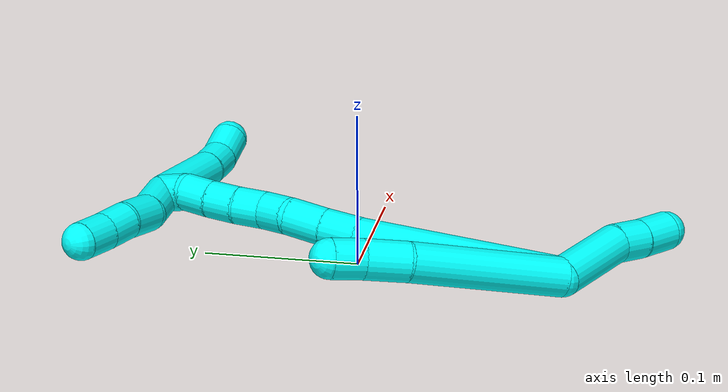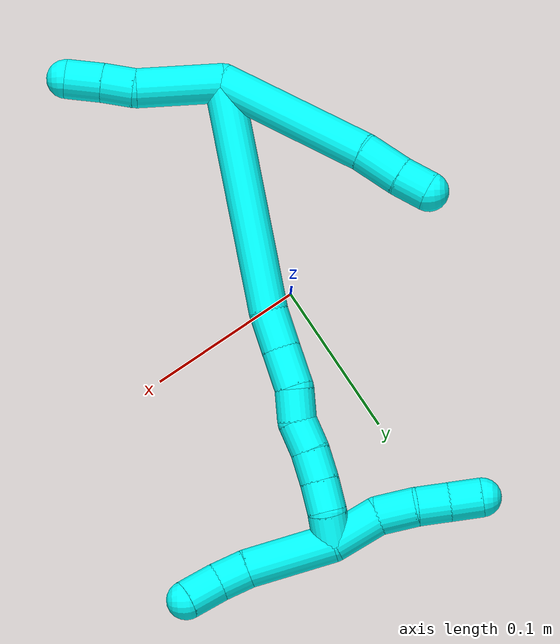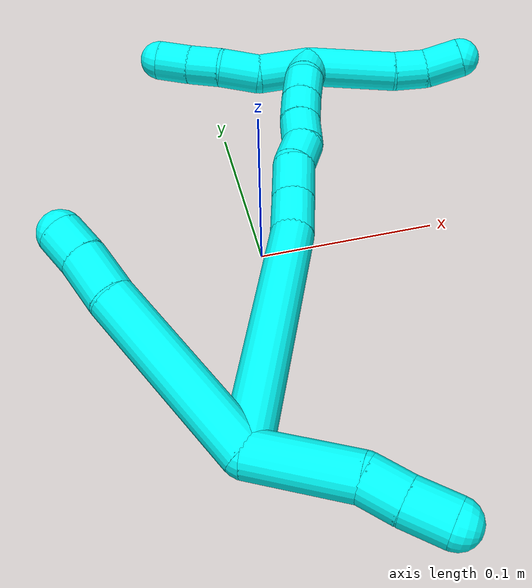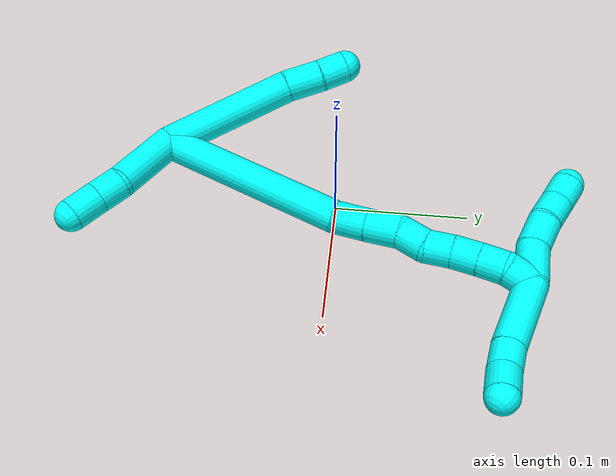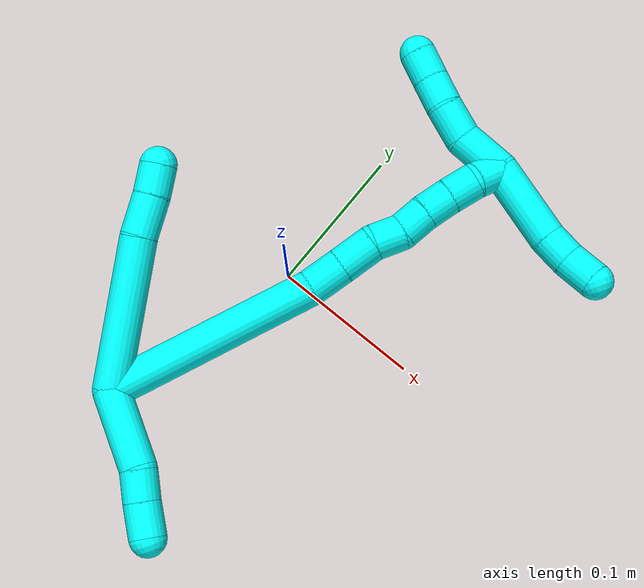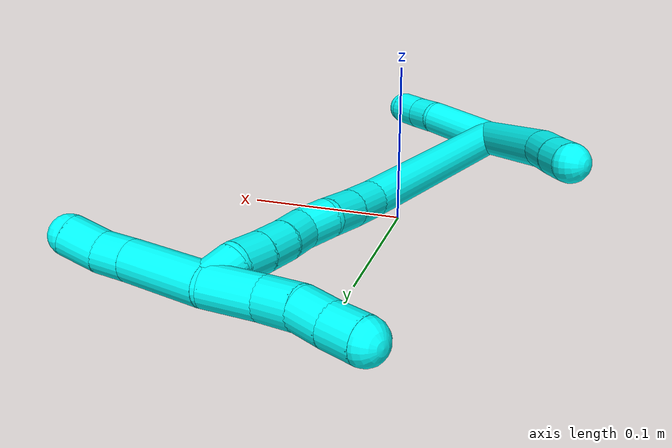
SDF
<sdf version="1.7">
 <world name="default">
  <model name="3">
   <static>0</static>
   <link name="3">
    <collision name="collision-cylinder-e_1_2_8">
     <pose>-0.020341 0.015974 -0.043842 -2.79218 -0.411097 1.73657</pose>
     <geometry><cylinder><radius>0.0125</radius><length>0.101805</length></cylinder></geometry>
     <surface>
      <friction><ode><mu>1.16</mu><mu2>1.16</mu2><slip1>0</slip1><slip2>0</slip2></ode></friction>
      <contact><ode><kp>1e+06</kp><kd>1</kd><max_vel>0</max_vel><min_depth>0.001</min_depth></ode></contact>
     </surface>
    </collision>
    <visual name="visual-cylinder-e_1_2_8">
     <pose>-0.020341 0.015974 -0.043842 -2.79218 -0.411097 1.73657</pose>
     <geometry><cylinder><radius>0.0125</radius><length>0.101805</length></cylinder></geometry>
     <material><ambient>0.003922 1 0.996078 1</ambient></material>
    </visual>
    <collision name="collision-cylinder-e_2_8_9">
     <pose>-0.046295 0.038055 -0.098865 -2.64174 -0.41493 1.37914</pose>
     <geometry><cylinder><radius>0.0125</radius><length>0.027843</length></cylinder></geometry>
     <surface>
      <friction><ode><mu>1.16</mu><mu2>1.16</mu2><slip1>0</slip1><slip2>0</slip2></ode></friction>
      <contact><ode><kp>1e+06</kp><kd>1</kd><max_vel>0</max_vel><min_depth>0.001</min_depth></ode></contact>
     </surface>
    </collision>
    <visual name="visual-cylinder-e_2_8_9">
     <pose>-0.046295 0.038055 -0.098865 -2.64174 -0.41493 1.37914</pose>
     <geometry><cylinder><radius>0.0125</radius><length>0.027843</length></cylinder></geometry>
     <material><ambient>0.003922 1 0.996078 1</ambient></material>
    </visual>
    <collision name="collision-cylinder-e_3_9_6">
     <pose>-0.055437 0.048094 -0.118743 -2.71696 -0.354223 1.38592</pose>
     <geometry><cylinder><radius>0.0125</radius><length>0.020353</length></cylinder></geometry>
     <surface>
      <friction><ode><mu>1.16</mu><mu2>1.16</mu2><slip1>0</slip1><slip2>0</slip2></ode></friction>
      <contact><ode><kp>1e+06</kp><kd>1</kd><max_vel>0</max_vel><min_depth>0.001</min_depth></ode></contact>
     </surface>
    </collision>
    <visual name="visual-cylinder-e_3_9_6">
     <pose>-0.055437 0.048094 -0.118743 -2.71696 -0.354223 1.38592</pose>
     <geometry><cylinder><radius>0.0125</radius><length>0.020353</length></cylinder></geometry>
     <material><ambient>0.003922 1 0.996078 1</ambient></material>
    </visual>
    <collision name="collision-cylinder-e_1_2_10">
     <pose>-0.004621 -0.002666 0.027196 0.097715 -0.167524 -0.008211</pose>
     <geometry><cylinder><radius>0.0125</radius><length>0.055429</length></cylinder></geometry>
     <surface>
      <friction><ode><mu>1.16</mu><mu2>1.16</mu2><slip1>0</slip1><slip2>0</slip2></ode></friction>
      <contact><ode><kp>1e+06</kp><kd>1</kd><max_vel>0</max_vel><min_depth>0.001</min_depth></ode></contact>
     </surface>
    </collision>
    <visual name="visual-cylinder-e_1_2_10">
     <pose>-0.004621 -0.002666 0.027196 0.097715 -0.167524 -0.008211</pose>
     <geometry><cylinder><radius>0.0125</radius><length>0.055429</length></cylinder></geometry>
     <material><ambient>0.003922 1 0.996078 1</ambient></material>
    </visual>
    <collision name="collision-cylinder-e_2_10_11">
     <pose>-0.008079 -0.007339 0.064681 0.192694 0.110522 0.010692</pose>
     <geometry><cylinder><radius>0.0125</radius><length>0.021093</length></cylinder></geometry>
     <surface>
      <friction><ode><mu>1.16</mu><mu2>1.16</mu2><slip1>0</slip1><slip2>0</slip2></ode></friction>
      <contact><ode><kp>1e+06</kp><kd>1</kd><max_vel>0</max_vel><min_depth>0.001</min_depth></ode></contact>
     </surface>
    </collision>
    <visual name="visual-cylinder-e_2_10_11">
     <pose>-0.008079 -0.007339 0.064681 0.192694 0.110522 0.010692</pose>
     <geometry><cylinder><radius>0.0125</radius><length>0.021093</length></cylinder></geometry>
     <material><ambient>0.003922 1 0.996078 1</ambient></material>
    </visual>
    <collision name="collision-cylinder-e_3_11_5">
     <pose>-0.006626 -0.01143 0.086518 0.178512 0.024714 0.002212</pose>
     <geometry><cylinder><radius>0.0125</radius><length>0.023478</length></cylinder></geometry>
     <surface>
      <friction><ode><mu>1.16</mu><mu2>1.16</mu2><slip1>0</slip1><slip2>0</slip2></ode></friction>
      <contact><ode><kp>1e+06</kp><kd>1</kd><max_vel>0</max_vel><min_depth>0.001</min_depth></ode></contact>
     </surface>
    </collision>
    <visual name="visual-cylinder-e_3_11_5">
     <pose>-0.006626 -0.01143 0.086518 0.178512 0.024714 0.002212</pose>
     <geometry><cylinder><radius>0.0125</radius><length>0.023478</length></cylinder></geometry>
     <material><ambient>0.003922 1 0.996078 1</ambient></material>
    </visual>
    <collision name="collision-cylinder-e_1_2_12">
     <pose>-0.040111 0.060619 -0.010496 -1.74224 -0.577776 0.678835</pose>
     <geometry><cylinder><radius>0.0125</radius><length>0.146884</length></cylinder></geometry>
     <surface>
      <friction><ode><mu>1.16</mu><mu2>1.16</mu2><slip1>0</slip1><slip2>0</slip2></ode></friction>
      <contact><ode><kp>1e+06</kp><kd>1</kd><max_vel>0</max_vel><min_depth>0.001</min_depth></ode></contact>
     </surface>
    </collision>
    <visual name="visual-cylinder-e_1_2_12">
     <pose>-0.040111 0.060619 -0.010496 -1.74224 -0.577776 0.678835</pose>
     <geometry><cylinder><radius>0.0125</radius><length>0.146884</length></cylinder></geometry>
     <material><ambient>0.003922 1 0.996078 1</ambient></material>
    </visual>
    <collision name="collision-cylinder-e_2_12_13">
     <pose>-0.088131 0.130676 -0.024546 -1.93102 -0.665012 0.925828</pose>
     <geometry><cylinder><radius>0.0125</radius><length>0.025634</length></cylinder></geometry>
     <surface>
      <friction><ode><mu>1.16</mu><mu2>1.16</mu2><slip1>0</slip1><slip2>0</slip2></ode></friction>
      <contact><ode><kp>1e+06</kp><kd>1</kd><max_vel>0</max_vel><min_depth>0.001</min_depth></ode></contact>
     </surface>
    </collision>
    <visual name="visual-cylinder-e_2_12_13">
     <pose>-0.088131 0.130676 -0.024546 -1.93102 -0.665012 0.925828</pose>
     <geometry><cylinder><radius>0.0125</radius><length>0.025634</length></cylinder></geometry>
     <material><ambient>0.003922 1 0.996078 1</ambient></material>
    </visual>
    <collision name="collision-cylinder-e_3_13_14">
     <pose>-0.104435 0.149268 -0.031818 -1.95653 -0.704373 0.999367</pose>
     <geometry><cylinder><radius>0.0125</radius><length>0.025928</length></cylinder></geometry>
     <surface>
      <friction><ode><mu>1.16</mu><mu2>1.16</mu2><slip1>0</slip1><slip2>0</slip2></ode></friction>
      <contact><ode><kp>1e+06</kp><kd>1</kd><max_vel>0</max_vel><min_depth>0.001</min_depth></ode></contact>
     </surface>
    </collision>
    <visual name="visual-cylinder-e_3_13_14">
     <pose>-0.104435 0.149268 -0.031818 -1.95653 -0.704373 0.999367</pose>
     <geometry><cylinder><radius>0.0125</radius><length>0.025928</length></cylinder></geometry>
     <material><ambient>0.003922 1 0.996078 1</ambient></material>
    </visual>
    <collision name="collision-cylinder-e_4_14_15">
     <pose>-0.118572 0.167123 -0.035871 -1.60936 -0.582913 0.60449</pose>
     <geometry><cylinder><radius>0.0125</radius><length>0.020863</length></cylinder></geometry>
     <surface>
      <friction><ode><mu>1.16</mu><mu2>1.16</mu2><slip1>0</slip1><slip2>0</slip2></ode></friction>
      <contact><ode><kp>1e+06</kp><kd>1</kd><max_vel>0</max_vel><min_depth>0.001</min_depth></ode></contact>
     </surface>
    </collision>
    <visual name="visual-cylinder-e_4_14_15">
     <pose>-0.118572 0.167123 -0.035871 -1.60936 -0.582913 0.60449</pose>
     <geometry><cylinder><radius>0.0125</radius><length>0.020863</length></cylinder></geometry>
     <material><ambient>0.003922 1 0.996078 1</ambient></material>
    </visual>
    <collision name="collision-cylinder-e_5_15_16">
     <pose>-0.129941 0.183297 -0.039829 -2.02221 -0.595599 0.911054</pose>
     <geometry><cylinder><radius>0.0125</radius><length>0.020061</length></cylinder></geometry>
     <surface>
      <friction><ode><mu>1.16</mu><mu2>1.16</mu2><slip1>0</slip1><slip2>0</slip2></ode></friction>
      <contact><ode><kp>1e+06</kp><kd>1</kd><max_vel>0</max_vel><min_depth>0.001</min_depth></ode></contact>
     </surface>
    </collision>
    <visual name="visual-cylinder-e_5_15_16">
     <pose>-0.129941 0.183297 -0.039829 -2.02221 -0.595599 0.911054</pose>
     <geometry><cylinder><radius>0.0125</radius><length>0.020061</length></cylinder></geometry>
     <material><ambient>0.003922 1 0.996078 1</ambient></material>
    </visual>
    <collision name="collision-cylinder-e_6_16_17">
     <pose>-0.141503 0.198474 -0.046017 -1.89226 -0.631019 0.850257</pose>
     <geometry><cylinder><radius>0.0125</radius><length>0.020119</length></cylinder></geometry>
     <surface>
      <friction><ode><mu>1.16</mu><mu2>1.16</mu2><slip1>0</slip1><slip2>0</slip2></ode></friction>
      <contact><ode><kp>1e+06</kp><kd>1</kd><max_vel>0</max_vel><min_depth>0.001</min_depth></ode></contact>
     </surface>
    </collision>
    <visual name="visual-cylinder-e_6_16_17">
     <pose>-0.141503 0.198474 -0.046017 -1.89226 -0.631019 0.850257</pose>
     <geometry><cylinder><radius>0.0125</radius><length>0.020119</length></cylinder></geometry>
     <material><ambient>0.003922 1 0.996078 1</ambient></material>
    </visual>
    <collision name="collision-cylinder-e_7_17_18">
     <pose>-0.153699 0.213811 -0.050627 -1.83245 -0.670195 0.851946</pose>
     <geometry><cylinder><radius>0.0125</radius><length>0.02016</length></cylinder></geometry>
     <surface>
      <friction><ode><mu>1.16</mu><mu2>1.16</mu2><slip1>0</slip1><slip2>0</slip2></ode></friction>
      <contact><ode><kp>1e+06</kp><kd>1</kd><max_vel>0</max_vel><min_depth>0.001</min_depth></ode></contact>
     </surface>
    </collision>
    <visual name="visual-cylinder-e_7_17_18">
     <pose>-0.153699 0.213811 -0.050627 -1.83245 -0.670195 0.851946</pose>
     <geometry><cylinder><radius>0.0125</radius><length>0.02016</length></cylinder></geometry>
     <material><ambient>0.003922 1 0.996078 1</ambient></material>
    </visual>
    <collision name="collision-cylinder-e_8_18_1">
     <pose>-0.163736 0.23084 -0.053653 -1.675 -0.380148 0.420812</pose>
     <geometry><cylinder><radius>0.0125</radius><length>0.020352</length></cylinder></geometry>
     <surface>
      <friction><ode><mu>1.16</mu><mu2>1.16</mu2><slip1>0</slip1><slip2>0</slip2></ode></friction>
      <contact><ode><kp>1e+06</kp><kd>1</kd><max_vel>0</max_vel><min_depth>0.001</min_depth></ode></contact>
     </surface>
    </collision>
    <visual name="visual-cylinder-e_8_18_1">
     <pose>-0.163736 0.23084 -0.053653 -1.675 -0.380148 0.420812</pose>
     <geometry><cylinder><radius>0.0125</radius><length>0.020352</length></cylinder></geometry>
     <material><ambient>0.003922 1 0.996078 1</ambient></material>
    </visual>
    <collision name="collision-cylinder-e_1_1_19">
     <pose>-0.160951 0.235404 -0.069075 2.81846 0.406811 1.80411</pose>
     <geometry><cylinder><radius>0.0125</radius><length>0.03316</length></cylinder></geometry>
     <surface>
      <friction><ode><mu>1.16</mu><mu2>1.16</mu2><slip1>0</slip1><slip2>0</slip2></ode></friction>
      <contact><ode><kp>1e+06</kp><kd>1</kd><max_vel>0</max_vel><min_depth>0.001</min_depth></ode></contact>
     </surface>
    </collision>
    <visual name="visual-cylinder-e_1_1_19">
     <pose>-0.160951 0.235404 -0.069075 2.81846 0.406811 1.80411</pose>
     <geometry><cylinder><radius>0.0125</radius><length>0.03316</length></cylinder></geometry>
     <material><ambient>0.003922 1 0.996078 1</ambient></material>
    </visual>
    <collision name="collision-cylinder-e_2_19_20">
     <pose>-0.153052 0.228633 -0.095937 2.98705 0.106056 1.20187</pose>
     <geometry><cylinder><radius>0.0125</radius><length>0.025288</length></cylinder></geometry>
     <surface>
      <friction><ode><mu>1.16</mu><mu2>1.16</mu2><slip1>0</slip1><slip2>0</slip2></ode></friction>
      <contact><ode><kp>1e+06</kp><kd>1</kd><max_vel>0</max_vel><min_depth>0.001</min_depth></ode></contact>
     </surface>
    </collision>
    <visual name="visual-cylinder-e_2_19_20">
     <pose>-0.153052 0.228633 -0.095937 2.98705 0.106056 1.20187</pose>
     <geometry><cylinder><radius>0.0125</radius><length>0.025288</length></cylinder></geometry>
     <material><ambient>0.003922 1 0.996078 1</ambient></material>
    </visual>
    <collision name="collision-cylinder-e_3_20_21">
     <pose>-0.149822 0.226941 -0.118499 -3.11761 0.184475 -2.88373</pose>
     <geometry><cylinder><radius>0.0125</radius><length>0.020632</length></cylinder></geometry>
     <surface>
      <friction><ode><mu>1.16</mu><mu2>1.16</mu2><slip1>0</slip1><slip2>0</slip2></ode></friction>
      <contact><ode><kp>1e+06</kp><kd>1</kd><max_vel>0</max_vel><min_depth>0.001</min_depth></ode></contact>
     </surface>
    </collision>
    <visual name="visual-cylinder-e_3_20_21">
     <pose>-0.149822 0.226941 -0.118499 -3.11761 0.184475 -2.88373</pose>
     <geometry><cylinder><radius>0.0125</radius><length>0.020632</length></cylinder></geometry>
     <material><ambient>0.003922 1 0.996078 1</ambient></material>
    </visual>
    <collision name="collision-cylinder-e_4_21_4">
     <pose>-0.146533 0.226967 -0.139001 3.12062 0.13385 2.83118</pose>
     <geometry><cylinder><radius>0.0125</radius><length>0.020919</length></cylinder></geometry>
     <surface>
      <friction><ode><mu>1.16</mu><mu2>1.16</mu2><slip1>0</slip1><slip2>0</slip2></ode></friction>
      <contact><ode><kp>1e+06</kp><kd>1</kd><max_vel>0</max_vel><min_depth>0.001</min_depth></ode></contact>
     </surface>
    </collision>
    <visual name="visual-cylinder-e_4_21_4">
     <pose>-0.146533 0.226967 -0.139001 3.12062 0.13385 2.83118</pose>
     <geometry><cylinder><radius>0.0125</radius><length>0.020919</length></cylinder></geometry>
     <material><ambient>0.003922 1 0.996078 1</ambient></material>
    </visual>
    <collision name="collision-cylinder-e_1_1_22">
     <pose>-0.173532 0.244317 -0.027604 -0.149739 -0.216773 0.016324</pose>
     <geometry><cylinder><radius>0.0125</radius><length>0.055986</length></cylinder></geometry>
     <surface>
      <friction><ode><mu>1.16</mu><mu2>1.16</mu2><slip1>0</slip1><slip2>0</slip2></ode></friction>
      <contact><ode><kp>1e+06</kp><kd>1</kd><max_vel>0</max_vel><min_depth>0.001</min_depth></ode></contact>
     </surface>
    </collision>
    <visual name="visual-cylinder-e_1_1_22">
     <pose>-0.173532 0.244317 -0.027604 -0.149739 -0.216773 0.016324</pose>
     <geometry><cylinder><radius>0.0125</radius><length>0.055986</length></cylinder></geometry>
     <material><ambient>0.003922 1 0.996078 1</ambient></material>
    </visual>
    <collision name="collision-cylinder-e_2_22_23">
     <pose>-0.183085 0.250562 0.008802 -0.227156 -0.351787 0.040541</pose>
     <geometry><cylinder><radius>0.0125</radius><length>0.020498</length></cylinder></geometry>
     <surface>
      <friction><ode><mu>1.16</mu><mu2>1.16</mu2><slip1>0</slip1><slip2>0</slip2></ode></friction>
      <contact><ode><kp>1e+06</kp><kd>1</kd><max_vel>0</max_vel><min_depth>0.001</min_depth></ode></contact>
     </surface>
    </collision>
    <visual name="visual-cylinder-e_2_22_23">
     <pose>-0.183085 0.250562 0.008802 -0.227156 -0.351787 0.040541</pose>
     <geometry><cylinder><radius>0.0125</radius><length>0.020498</length></cylinder></geometry>
     <material><ambient>0.003922 1 0.996078 1</ambient></material>
    </visual>
    <collision name="collision-cylinder-e_3_23_3">
     <pose>-0.193079 0.25405 0.02791 -0.134859 -0.581894 0.040439</pose>
     <geometry><cylinder><radius>0.0125</radius><length>0.023516</length></cylinder></geometry>
     <surface>
      <friction><ode><mu>1.16</mu><mu2>1.16</mu2><slip1>0</slip1><slip2>0</slip2></ode></friction>
      <contact><ode><kp>1e+06</kp><kd>1</kd><max_vel>0</max_vel><min_depth>0.001</min_depth></ode></contact>
     </surface>
    </collision>
    <visual name="visual-cylinder-e_3_23_3">
     <pose>-0.193079 0.25405 0.02791 -0.134859 -0.581894 0.040439</pose>
     <geometry><cylinder><radius>0.0125</radius><length>0.023516</length></cylinder></geometry>
     <material><ambient>0.003922 1 0.996078 1</ambient></material>
    </visual>
    <collision name="collision-sphere-3">
     <pose>-0.199541 0.25537 0.037644 0 -0 0</pose>
     <geometry><sphere><radius>0.0125</radius></sphere></geometry>
     <surface>
      <friction><ode><mu>1.16</mu><mu2>1.16</mu2><slip1>0</slip1><slip2>0</slip2></ode></friction>
      <contact><ode><kp>1e+06</kp><kd>1</kd><max_vel>0</max_vel><min_depth>0.001</min_depth></ode></contact>
     </surface>
    </collision>
    <visual name="visual-sphere-3">
     <pose>-0.199541 0.25537 0.037644 0 -0 0</pose>
     <geometry><sphere><radius>0.0125</radius></sphere></geometry>
     <material><ambient>0.003922 1 0.996078 1</ambient></material>
    </visual>
    <collision name="collision-sphere-23">
     <pose>-0.186616 0.252729 0.018176 0 -0 0</pose>
     <geometry><sphere><radius>0.0125</radius></sphere></geometry>
     <surface>
      <friction><ode><mu>1.16</mu><mu2>1.16</mu2><slip1>0</slip1><slip2>0</slip2></ode></friction>
      <contact><ode><kp>1e+06</kp><kd>1</kd><max_vel>0</max_vel><min_depth>0.001</min_depth></ode></contact>
     </surface>
    </collision>
    <visual name="visual-sphere-23">
     <pose>-0.186616 0.252729 0.018176 0 -0 0</pose>
     <geometry><sphere><radius>0.0125</radius></sphere></geometry>
     <material><ambient>0.003922 1 0.996078 1</ambient></material>
    </visual>
    <collision name="collision-sphere-22">
     <pose>-0.179553 0.248395 -0.000572 0 -0 0</pose>
     <geometry><sphere><radius>0.0125</radius></sphere></geometry>
     <surface>
      <friction><ode><mu>1.16</mu><mu2>1.16</mu2><slip1>0</slip1><slip2>0</slip2></ode></friction>
      <contact><ode><kp>1e+06</kp><kd>1</kd><max_vel>0</max_vel><min_depth>0.001</min_depth></ode></contact>
     </surface>
    </collision>
    <visual name="visual-sphere-22">
     <pose>-0.179553 0.248395 -0.000572 0 -0 0</pose>
     <geometry><sphere><radius>0.0125</radius></sphere></geometry>
     <material><ambient>0.003922 1 0.996078 1</ambient></material>
    </visual>
    <collision name="collision-sphere-4">
     <pose>-0.145138 0.226749 -0.149364 0 -0 0</pose>
     <geometry><sphere><radius>0.0125</radius></sphere></geometry>
     <surface>
      <friction><ode><mu>1.16</mu><mu2>1.16</mu2><slip1>0</slip1><slip2>0</slip2></ode></friction>
      <contact><ode><kp>1e+06</kp><kd>1</kd><max_vel>0</max_vel><min_depth>0.001</min_depth></ode></contact>
     </surface>
    </collision>
    <visual name="visual-sphere-4">
     <pose>-0.145138 0.226749 -0.149364 0 -0 0</pose>
     <geometry><sphere><radius>0.0125</radius></sphere></geometry>
     <material><ambient>0.003922 1 0.996078 1</ambient></material>
    </visual>
    <collision name="collision-sphere-21">
     <pose>-0.147929 0.227184 -0.128637 0 -0 0</pose>
     <geometry><sphere><radius>0.0125</radius></sphere></geometry>
     <surface>
      <friction><ode><mu>1.16</mu><mu2>1.16</mu2><slip1>0</slip1><slip2>0</slip2></ode></friction>
      <contact><ode><kp>1e+06</kp><kd>1</kd><max_vel>0</max_vel><min_depth>0.001</min_depth></ode></contact>
     </surface>
    </collision>
    <visual name="visual-sphere-21">
     <pose>-0.147929 0.227184 -0.128637 0 -0 0</pose>
     <geometry><sphere><radius>0.0125</radius></sphere></geometry>
     <material><ambient>0.003922 1 0.996078 1</ambient></material>
    </visual>
    <collision name="collision-sphere-20">
     <pose>-0.151714 0.226698 -0.10836 0 -0 0</pose>
     <geometry><sphere><radius>0.0125</radius></sphere></geometry>
     <surface>
      <friction><ode><mu>1.16</mu><mu2>1.16</mu2><slip1>0</slip1><slip2>0</slip2></ode></friction>
      <contact><ode><kp>1e+06</kp><kd>1</kd><max_vel>0</max_vel><min_depth>0.001</min_depth></ode></contact>
     </surface>
    </collision>
    <visual name="visual-sphere-20">
     <pose>-0.151714 0.226698 -0.10836 0 -0 0</pose>
     <geometry><sphere><radius>0.0125</radius></sphere></geometry>
     <material><ambient>0.003922 1 0.996078 1</ambient></material>
    </visual>
    <collision name="collision-sphere-11">
     <pose>-0.006916 -0.009347 0.074969 0 -0 0</pose>
     <geometry><sphere><radius>0.0125</radius></sphere></geometry>
     <surface>
      <friction><ode><mu>1.16</mu><mu2>1.16</mu2><slip1>0</slip1><slip2>0</slip2></ode></friction>
      <contact><ode><kp>1e+06</kp><kd>1</kd><max_vel>0</max_vel><min_depth>0.001</min_depth></ode></contact>
     </surface>
    </collision>
    <visual name="visual-sphere-11">
     <pose>-0.006916 -0.009347 0.074969 0 -0 0</pose>
     <geometry><sphere><radius>0.0125</radius></sphere></geometry>
     <material><ambient>0.003922 1 0.996078 1</ambient></material>
    </visual>
    <collision name="collision-sphere-10">
     <pose>-0.009242 -0.005332 0.054393 0 -0 0</pose>
     <geometry><sphere><radius>0.0125</radius></sphere></geometry>
     <surface>
      <friction><ode><mu>1.16</mu><mu2>1.16</mu2><slip1>0</slip1><slip2>0</slip2></ode></friction>
      <contact><ode><kp>1e+06</kp><kd>1</kd><max_vel>0</max_vel><min_depth>0.001</min_depth></ode></contact>
     </surface>
    </collision>
    <visual name="visual-sphere-10">
     <pose>-0.009242 -0.005332 0.054393 0 -0 0</pose>
     <geometry><sphere><radius>0.0125</radius></sphere></geometry>
     <material><ambient>0.003922 1 0.996078 1</ambient></material>
    </visual>
    <collision name="collision-sphere-6">
     <pose>-0.058966 0.052026 -0.12744 0 -0 0</pose>
     <geometry><sphere><radius>0.0125</radius></sphere></geometry>
     <surface>
      <friction><ode><mu>1.16</mu><mu2>1.16</mu2><slip1>0</slip1><slip2>0</slip2></ode></friction>
      <contact><ode><kp>1e+06</kp><kd>1</kd><max_vel>0</max_vel><min_depth>0.001</min_depth></ode></contact>
     </surface>
    </collision>
    <visual name="visual-sphere-6">
     <pose>-0.058966 0.052026 -0.12744 0 -0 0</pose>
     <geometry><sphere><radius>0.0125</radius></sphere></geometry>
     <material><ambient>0.003922 1 0.996078 1</ambient></material>
    </visual>
    <collision name="collision-sphere-9">
     <pose>-0.051907 0.044161 -0.110046 0 -0 0</pose>
     <geometry><sphere><radius>0.0125</radius></sphere></geometry>
     <surface>
      <friction><ode><mu>1.16</mu><mu2>1.16</mu2><slip1>0</slip1><slip2>0</slip2></ode></friction>
      <contact><ode><kp>1e+06</kp><kd>1</kd><max_vel>0</max_vel><min_depth>0.001</min_depth></ode></contact>
     </surface>
    </collision>
    <visual name="visual-sphere-9">
     <pose>-0.051907 0.044161 -0.110046 0 -0 0</pose>
     <geometry><sphere><radius>0.0125</radius></sphere></geometry>
     <material><ambient>0.003922 1 0.996078 1</ambient></material>
    </visual>
    <collision name="collision-sphere-2">
     <geometry><sphere><radius>0.0125</radius></sphere></geometry>
     <surface>
      <friction><ode><mu>1.16</mu><mu2>1.16</mu2><slip1>0</slip1><slip2>0</slip2></ode></friction>
      <contact><ode><kp>1e+06</kp><kd>1</kd><max_vel>0</max_vel><min_depth>0.001</min_depth></ode></contact>
     </surface>
    </collision>
    <visual name="visual-sphere-2">
     <geometry><sphere><radius>0.0125</radius></sphere></geometry>
     <material><ambient>0.003922 1 0.996078 1</ambient></material>
    </visual>
    <collision name="collision-sphere-19">
     <pose>-0.154391 0.230568 -0.083514 0 -0 0</pose>
     <geometry><sphere><radius>0.0125</radius></sphere></geometry>
     <surface>
      <friction><ode><mu>1.16</mu><mu2>1.16</mu2><slip1>0</slip1><slip2>0</slip2></ode></friction>
      <contact><ode><kp>1e+06</kp><kd>1</kd><max_vel>0</max_vel><min_depth>0.001</min_depth></ode></contact>
     </surface>
    </collision>
    <visual name="visual-sphere-19">
     <pose>-0.154391 0.230568 -0.083514 0 -0 0</pose>
     <geometry><sphere><radius>0.0125</radius></sphere></geometry>
     <material><ambient>0.003922 1 0.996078 1</ambient></material>
    </visual>
    <collision name="collision-sphere-8">
     <pose>-0.040683 0.031949 -0.087683 0 -0 0</pose>
     <geometry><sphere><radius>0.0125</radius></sphere></geometry>
     <surface>
      <friction><ode><mu>1.16</mu><mu2>1.16</mu2><slip1>0</slip1><slip2>0</slip2></ode></friction>
      <contact><ode><kp>1e+06</kp><kd>1</kd><max_vel>0</max_vel><min_depth>0.001</min_depth></ode></contact>
     </surface>
    </collision>
    <visual name="visual-sphere-8">
     <pose>-0.040683 0.031949 -0.087683 0 -0 0</pose>
     <geometry><sphere><radius>0.0125</radius></sphere></geometry>
     <material><ambient>0.003922 1 0.996078 1</ambient></material>
    </visual>
    <collision name="collision-sphere-5">
     <pose>-0.006336 -0.013514 0.098066 0 -0 0</pose>
     <geometry><sphere><radius>0.0125</radius></sphere></geometry>
     <surface>
      <friction><ode><mu>1.16</mu><mu2>1.16</mu2><slip1>0</slip1><slip2>0</slip2></ode></friction>
      <contact><ode><kp>1e+06</kp><kd>1</kd><max_vel>0</max_vel><min_depth>0.001</min_depth></ode></contact>
     </surface>
    </collision>
    <visual name="visual-sphere-5">
     <pose>-0.006336 -0.013514 0.098066 0 -0 0</pose>
     <geometry><sphere><radius>0.0125</radius></sphere></geometry>
     <material><ambient>0.003922 1 0.996078 1</ambient></material>
    </visual>
    <collision name="collision-sphere-12">
     <pose>-0.080222 0.121238 -0.020991 0 -0 0</pose>
     <geometry><sphere><radius>0.0125</radius></sphere></geometry>
     <surface>
      <friction><ode><mu>1.16</mu><mu2>1.16</mu2><slip1>0</slip1><slip2>0</slip2></ode></friction>
      <contact><ode><kp>1e+06</kp><kd>1</kd><max_vel>0</max_vel><min_depth>0.001</min_depth></ode></contact>
     </surface>
    </collision>
    <visual name="visual-sphere-12">
     <pose>-0.080222 0.121238 -0.020991 0 -0 0</pose>
     <geometry><sphere><radius>0.0125</radius></sphere></geometry>
     <material><ambient>0.003922 1 0.996078 1</ambient></material>
    </visual>
    <collision name="collision-sphere-13">
     <pose>-0.09604 0.140115 -0.028101 0 -0 0</pose>
     <geometry><sphere><radius>0.0125</radius></sphere></geometry>
     <surface>
      <friction><ode><mu>1.16</mu><mu2>1.16</mu2><slip1>0</slip1><slip2>0</slip2></ode></friction>
      <contact><ode><kp>1e+06</kp><kd>1</kd><max_vel>0</max_vel><min_depth>0.001</min_depth></ode></contact>
     </surface>
    </collision>
    <visual name="visual-sphere-13">
     <pose>-0.09604 0.140115 -0.028101 0 -0 0</pose>
     <geometry><sphere><radius>0.0125</radius></sphere></geometry>
     <material><ambient>0.003922 1 0.996078 1</ambient></material>
    </visual>
    <collision name="collision-sphere-14">
     <pose>-0.11283 0.15842 -0.035535 0 -0 0</pose>
     <geometry><sphere><radius>0.0125</radius></sphere></geometry>
     <surface>
      <friction><ode><mu>1.16</mu><mu2>1.16</mu2><slip1>0</slip1><slip2>0</slip2></ode></friction>
      <contact><ode><kp>1e+06</kp><kd>1</kd><max_vel>0</max_vel><min_depth>0.001</min_depth></ode></contact>
     </surface>
    </collision>
    <visual name="visual-sphere-14">
     <pose>-0.11283 0.15842 -0.035535 0 -0 0</pose>
     <geometry><sphere><radius>0.0125</radius></sphere></geometry>
     <material><ambient>0.003922 1 0.996078 1</ambient></material>
    </visual>
    <collision name="collision-sphere-15">
     <pose>-0.124314 0.175825 -0.036206 0 -0 0</pose>
     <geometry><sphere><radius>0.0125</radius></sphere></geometry>
     <surface>
      <friction><ode><mu>1.16</mu><mu2>1.16</mu2><slip1>0</slip1><slip2>0</slip2></ode></friction>
      <contact><ode><kp>1e+06</kp><kd>1</kd><max_vel>0</max_vel><min_depth>0.001</min_depth></ode></contact>
     </surface>
    </collision>
    <visual name="visual-sphere-15">
     <pose>-0.124314 0.175825 -0.036206 0 -0 0</pose>
     <geometry><sphere><radius>0.0125</radius></sphere></geometry>
     <material><ambient>0.003922 1 0.996078 1</ambient></material>
    </visual>
    <collision name="collision-sphere-16">
     <pose>-0.135568 0.190768 -0.043451 0 -0 0</pose>
     <geometry><sphere><radius>0.0125</radius></sphere></geometry>
     <surface>
      <friction><ode><mu>1.16</mu><mu2>1.16</mu2><slip1>0</slip1><slip2>0</slip2></ode></friction>
      <contact><ode><kp>1e+06</kp><kd>1</kd><max_vel>0</max_vel><min_depth>0.001</min_depth></ode></contact>
     </surface>
    </collision>
    <visual name="visual-sphere-16">
     <pose>-0.135568 0.190768 -0.043451 0 -0 0</pose>
     <geometry><sphere><radius>0.0125</radius></sphere></geometry>
     <material><ambient>0.003922 1 0.996078 1</ambient></material>
    </visual>
    <collision name="collision-sphere-17">
     <pose>-0.147438 0.206181 -0.048583 0 -0 0</pose>
     <geometry><sphere><radius>0.0125</radius></sphere></geometry>
     <surface>
      <friction><ode><mu>1.16</mu><mu2>1.16</mu2><slip1>0</slip1><slip2>0</slip2></ode></friction>
      <contact><ode><kp>1e+06</kp><kd>1</kd><max_vel>0</max_vel><min_depth>0.001</min_depth></ode></contact>
     </surface>
    </collision>
    <visual name="visual-sphere-17">
     <pose>-0.147438 0.206181 -0.048583 0 -0 0</pose>
     <geometry><sphere><radius>0.0125</radius></sphere></geometry>
     <material><ambient>0.003922 1 0.996078 1</ambient></material>
    </visual>
    <collision name="collision-sphere-18">
     <pose>-0.15996 0.221442 -0.05267 0 -0 0</pose>
     <geometry><sphere><radius>0.0125</radius></sphere></geometry>
     <surface>
      <friction><ode><mu>1.16</mu><mu2>1.16</mu2><slip1>0</slip1><slip2>0</slip2></ode></friction>
      <contact><ode><kp>1e+06</kp><kd>1</kd><max_vel>0</max_vel><min_depth>0.001</min_depth></ode></contact>
     </surface>
    </collision>
    <visual name="visual-sphere-18">
     <pose>-0.15996 0.221442 -0.05267 0 -0 0</pose>
     <geometry><sphere><radius>0.0125</radius></sphere></geometry>
     <material><ambient>0.003922 1 0.996078 1</ambient></material>
    </visual>
    <collision name="collision-sphere-1">
     <pose>-0.167512 0.240239 -0.054636 0 -0 0</pose>
     <geometry><sphere><radius>0.0125</radius></sphere></geometry>
     <surface>
      <friction><ode><mu>1.16</mu><mu2>1.16</mu2><slip1>0</slip1><slip2>0</slip2></ode></friction>
      <contact><ode><kp>1e+06</kp><kd>1</kd><max_vel>0</max_vel><min_depth>0.001</min_depth></ode></contact>
     </surface>
    </collision>
    <visual name="visual-sphere-1">
     <pose>-0.167512 0.240239 -0.054636 0 -0 0</pose>
     <geometry><sphere><radius>0.0125</radius></sphere></geometry>
     <material><ambient>0.003922 1 0.996078 1</ambient></material>
    </visual>
    <inertial>
     <pose>-0.08488 0.116253 -0.030786 0 -0 0</pose>
     <mass>0.75</mass>
     <inertia>
      <ixx>0.000429</ixx>
      <ixy>0</ixy>
      <ixz>0</ixz>
      <iyy>0.000393</iyy>
      <iyz>0</iyz>
      <izz>-7.1e-05</izz>
     </inertia>
    </inertial>
   </link>
   <pose>-0.038648 -0.133758 0.018254 -1.76157 0.913679 -2.26924</pose>
  </model>
 </world>
</sdf>
